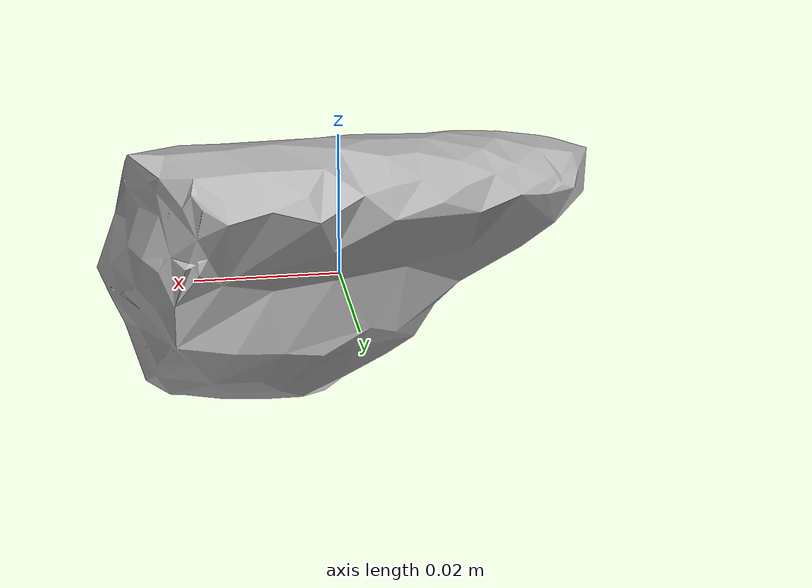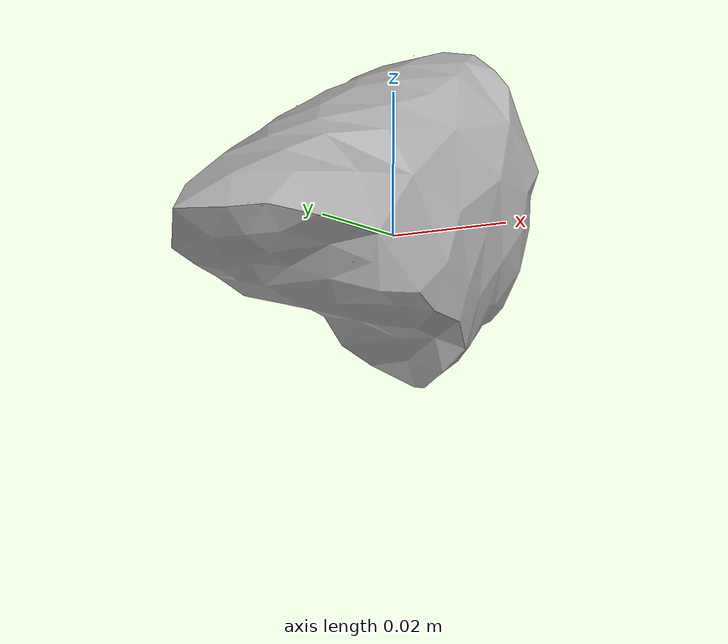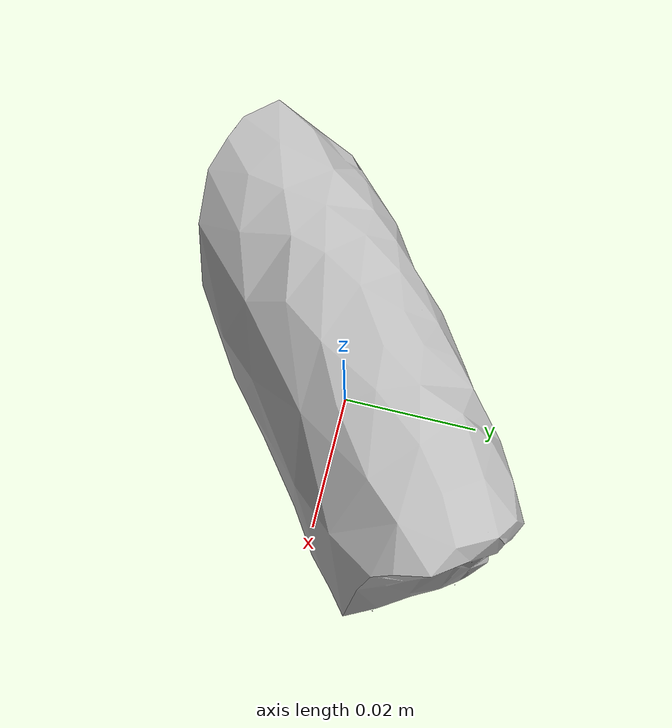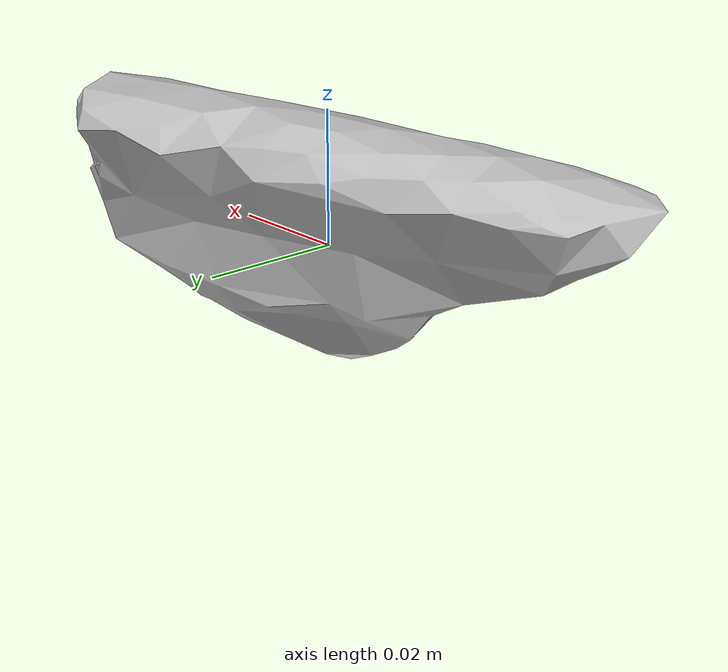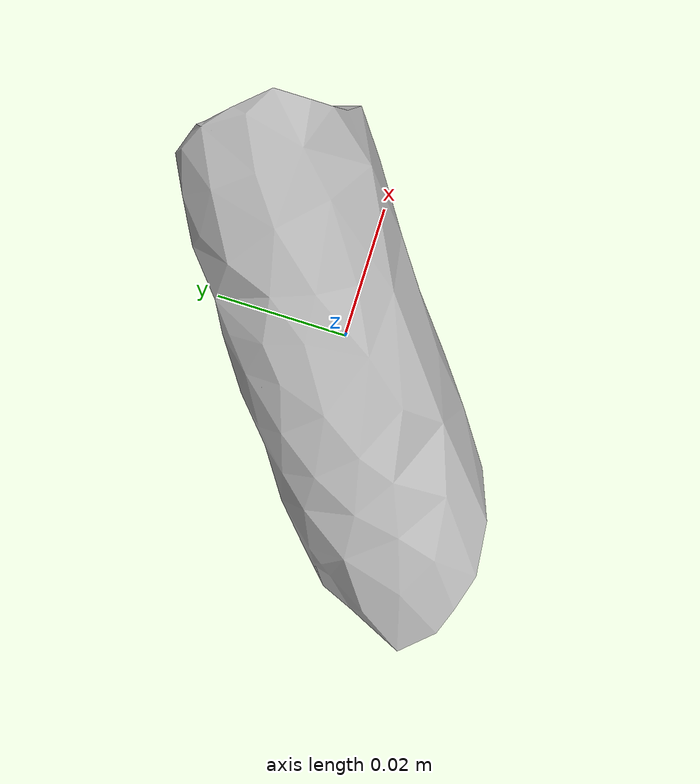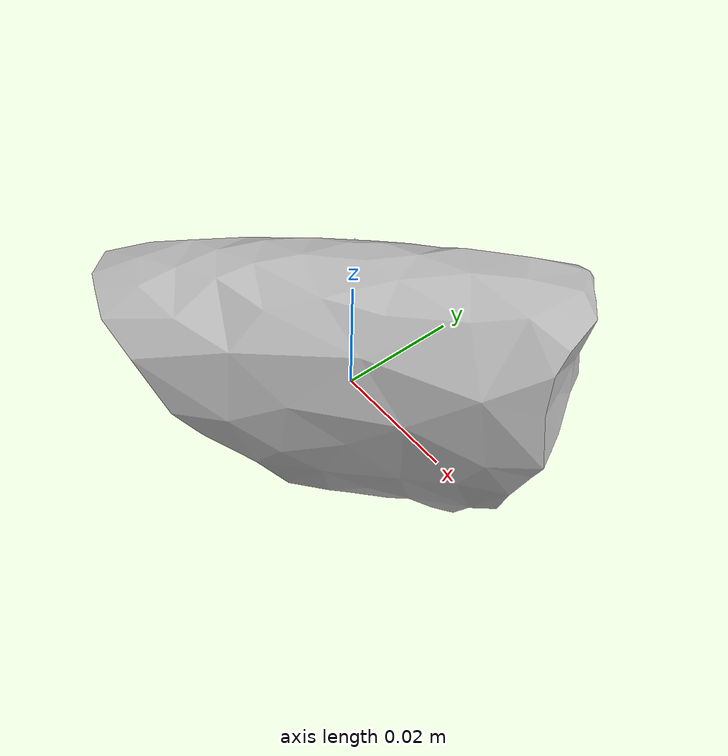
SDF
<?xml version="1.0" ?>
<sdf version="1.5">
  <model name='sherd_c'>

    <pose frame=''>0 0 0 0 0 0</pose>
    <static>false</static> <!-- mass is ignored for static models -->
    <link name='sherd_c_link'>
      <pose frame=''>0 0 0.005 0 0 0</pose>
      <inertial>
        <mass>0.05</mass>
        <inertia>
          <ixx>1.2862525000000001e-06</ixx>
          <ixy>-7.896410000000001e-07</ixy>
          <ixz>2.26455e-08</ixz>
          <iyy>1.986088e-06</iyy>
          <iyz>-1.9255249999999998e-07</iyz>
          <izz>2.2807955e-06</izz>
        </inertia>
      </inertial>
      <collision name='collision'> <!-- .dae mesh for collision falls through the blue mat; .stl avoids this -->
        <geometry>
          <mesh>
            <uri>model://sherd_c/meshes/sherd_c.stl</uri>
            <scale>2 2 2</scale>
          </mesh>
        </geometry>
        <surface>
          <contact>
            <poissons_ratio>0.15</poissons_ratio>
            <elastic_modulus>8e+10</elastic_modulus>
            <ode>
              <kp>100000</kp>
              <kd>100</kd>
              <max_vel>100</max_vel>
              <min_depth>0.001</min_depth>
            </ode>
          </contact>
          <friction>
            <torsional>
              <coefficient>1</coefficient>
            </torsional>
            <ode>
              <mu>1.0</mu>
              <mu2>1.0</mu2>
              <fdir1>1 0 0</fdir1> <!-- specify in x dir to prevent slipping on mat AND in gripper. Gazebo automatically picks fdir2 as vector normal to applied force on surface -->
            </ode>
          </friction>
          <bounce/>
        </surface>
        <max_contacts>10</max_contacts>
      </collision>
      <visual name='visual'>
        <geometry>
          <mesh>
            <uri>model://sherd_c/meshes/sherd_c.stl</uri>
            <scale>2 2 2</scale>
          </mesh>
        </geometry>
        <material>
          <script>
            <uri>model://sherd_c/materials/scripts</uri>
            <uri>model://sherd_c/materials/textures</uri>
            <name>sherdMat/c</name>
          </script>
        </material>
      </visual>
      <self_collide>0</self_collide>
      <kinematic>0</kinematic>
      <gravity>1</gravity>
    </link>
  </model>
</sdf>
